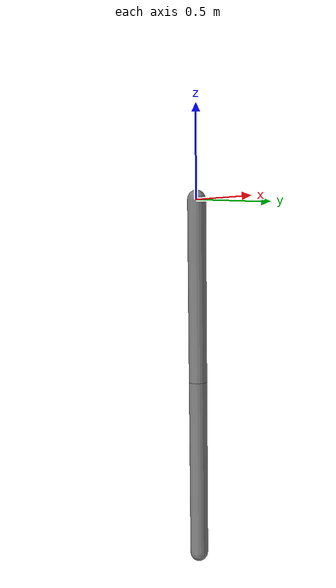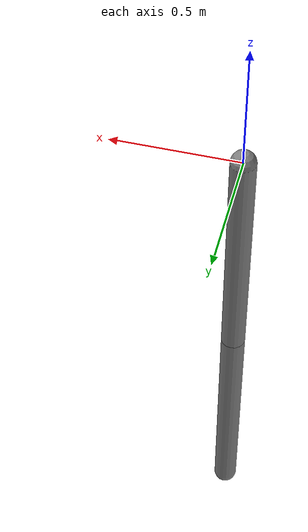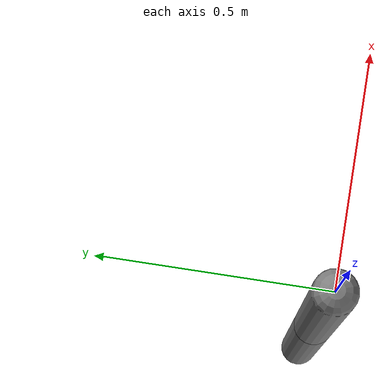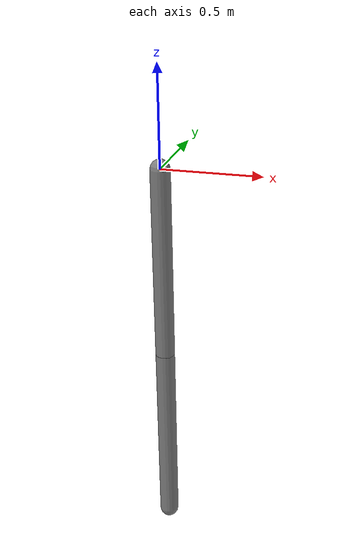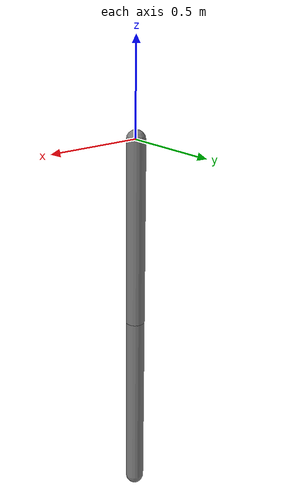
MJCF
<mujoco model="double_pendulum">

    <option timestep="0.002" gravity="0 0 -9.81"/>

    <worldbody>

        <!-- Link 1 -->
        <body name="link1" pos="0 0 0">

            <joint name="joint1"
                   type="hinge"
                   axis="0 1 0"
                   damping="0"/>

            <geom type="capsule"
                  fromto="0 0 0 0 0 -1"
                  size="0.05"
                  density="1000"/>

            <!-- Link 2 -->
            <body name="link2" pos="0 0 -1">

                <joint name="joint2"
                       type="hinge"
                       axis="0 1 0"
                       damping="0"/>

                <geom type="capsule"
                      fromto="0 0 0 0 0 -1"
                      size="0.05"
                      density="1000"/>

            </body>

        </body>

    </worldbody>

    <!-- ONLY SECOND JOINT ACTUATED -->
    <actuator>
        <motor joint="joint1"
               ctrlrange="-20 20"
               gear="1"/>
    </actuator>

</mujoco>
